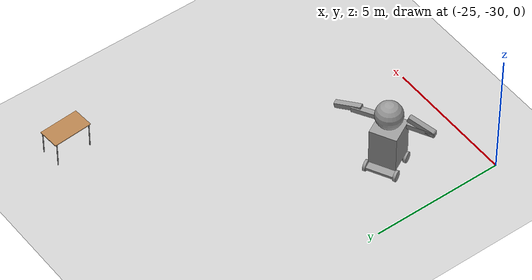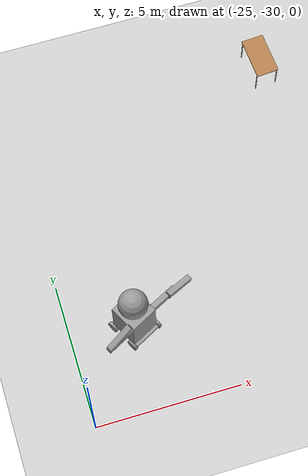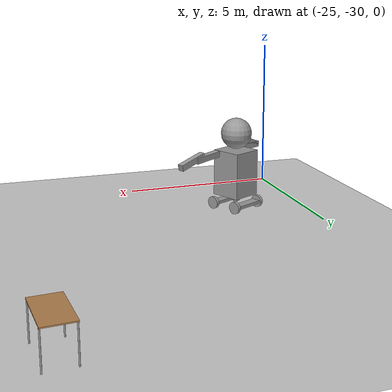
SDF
<sdf version="1.7">
 <world name="default">
  <model name="ground_plane">
   <static>1</static>
   <link name="link">
    <collision name="collision">
     <geometry><plane><normal>0 0 1</normal><size>100 100</size></plane></geometry>
     <surface>
      <contact><collide_bitmask>65535</collide_bitmask></contact>
      <friction><ode><mu>100</mu><mu2>50</mu2></ode></friction>
     </surface>
    </collision>
    <visual name="visual">
     <cast_shadows>0</cast_shadows>
     <geometry><plane><normal>0 0 1</normal><size>100 100</size></plane></geometry>
     <material>
      <script><uri>file://media/materials/scripts/gazebo.material</uri><name>Gazebo/Grey</name></script>
     </material>
    </visual>
   </link>
  </model>
  <model name="humanoid_robot_0">
   <link name="link_1">
    <inertial>
     <mass>2.10479</mass>
     <inertia>
      <ixx>0.952439</ixx>
      <ixy>0</ixy>
      <ixz>0</ixz>
      <iyy>0.952439</iyy>
      <iyz>0</iyz>
      <izz>0.350798</izz>
     </inertia>
    </inertial>
    <pose>-0.448722 -0.08924 -0.419518 0 -0 0</pose>
    <visual name="visual">
     <pose>0 0 0.2 0 -0 0</pose>
     <geometry><box><size>1 1 1.5</size></box></geometry>
     <material>
      <lighting>1</lighting>
      <script><uri>file://media/materials/scripts/gazebo.material</uri><name>Gazebo/Grey</name></script>
      <shader type="pixel"><normal_map>__default__</normal_map></shader>
      <ambient>0.3 0.3 0.3 1</ambient>
      <diffuse>0.7 0.7 0.7 1</diffuse>
      <specular>0.01 0.01 0.01 1</specular>
      <emissive>0 0 0 1</emissive>
     </material>
    </visual>
    <collision name="collision">
     <pose>0 0 0.2 0 -0 0</pose>
     <geometry><box><size>1 1 1.5</size></box></geometry>
     <surface>
      <friction>
       <ode><mu>1</mu><mu2>1</mu2><fdir1>0 0 0</fdir1><slip1>0</slip1><slip2>0</slip2></ode>
       <torsional>
        <coefficient>1</coefficient>
        <patch_radius>0</patch_radius>
        <surface_radius>0</surface_radius>
        <use_patch_radius>1</use_patch_radius>
        <ode><slip>0</slip></ode>
       </torsional>
      </friction>
      <bounce><restitution_coefficient>0</restitution_coefficient><threshold>1e+06</threshold></bounce>
      <contact>
       <collide_without_contact>0</collide_without_contact>
       <collide_without_contact_bitmask>1</collide_without_contact_bitmask>
       <collide_bitmask>1</collide_bitmask>
       <ode>
        <soft_cfm>0</soft_cfm>
        <soft_erp>0.2</soft_erp>
        <kp>1e+13</kp>
        <kd>1</kd>
        <max_vel>0.01</max_vel>
        <min_depth>0</min_depth>
       </ode>
       <bullet>
        <split_impulse>1</split_impulse>
        <split_impulse_penetration_threshold>-0.01</split_impulse_penetration_threshold>
        <soft_cfm>0</soft_cfm>
        <soft_erp>0.2</soft_erp>
        <kp>1e+13</kp>
        <kd>1</kd>
       </bullet>
      </contact>
     </surface>
    </collision>
   </link>
   <link name="link_4">
    <inertial>
     <mass>1</mass>
     <inertia><ixx>0.1</ixx><ixy>0</ixy><ixz>0</ixz><iyy>0.1</iyy><iyz>0</iyz><izz>0.1</izz></inertia>
    </inertial>
    <pose>-0.448722 -0.08924 1.08048 0 -0 0</pose>
    <visual name="visual">
     <geometry><sphere><radius>0.5</radius></sphere></geometry>
     <material>
      <lighting>1</lighting>
      <script><uri>file://media/materials/scripts/gazebo.material</uri><name>Gazebo/Grey</name></script>
      <shader type="pixel"><normal_map>__default__</normal_map></shader>
      <ambient>0.3 0.3 0.3 1</ambient>
      <diffuse>0.7 0.7 0.7 1</diffuse>
      <specular>0.01 0.01 0.01 1</specular>
      <emissive>0 0 0 1</emissive>
     </material>
    </visual>
    <collision name="collision">
     <geometry><sphere><radius>0.5</radius></sphere></geometry>
     <surface>
      <friction>
       <ode><mu>1</mu><mu2>1</mu2><fdir1>0 0 0</fdir1><slip1>0</slip1><slip2>0</slip2></ode>
       <torsional>
        <coefficient>1</coefficient>
        <patch_radius>0</patch_radius>
        <surface_radius>0</surface_radius>
        <use_patch_radius>1</use_patch_radius>
        <ode><slip>0</slip></ode>
       </torsional>
      </friction>
      <bounce><restitution_coefficient>0</restitution_coefficient><threshold>1e+06</threshold></bounce>
      <contact>
       <collide_without_contact>0</collide_without_contact>
       <collide_without_contact_bitmask>1</collide_without_contact_bitmask>
       <collide_bitmask>1</collide_bitmask>
       <ode>
        <soft_cfm>0</soft_cfm>
        <soft_erp>0.2</soft_erp>
        <kp>1e+13</kp>
        <kd>1</kd>
        <max_vel>0.01</max_vel>
        <min_depth>0</min_depth>
       </ode>
       <bullet>
        <split_impulse>1</split_impulse>
        <split_impulse_penetration_threshold>-0.01</split_impulse_penetration_threshold>
        <soft_cfm>0</soft_cfm>
        <soft_erp>0.2</soft_erp>
        <kp>1e+13</kp>
        <kd>1</kd>
       </bullet>
      </contact>
     </surface>
    </collision>
   </link>
   <link name="link_5">
    <inertial>
     <mass>1</mass>
     <inertia>
      <ixx>0.166667</ixx>
      <ixy>0</ixy>
      <ixz>0</ixz>
      <iyy>0.166667</iyy>
      <iyz>0</iyz>
      <izz>0.166667</izz>
     </inertia>
    </inertial>
    <pose>-0.088722 0.91076 0.390482 -0.06 -0.04 0</pose>
    <visual name="visual">
     <geometry><box><size>0.2 1 0.2</size></box></geometry>
     <material>
      <lighting>1</lighting>
      <script><uri>file://media/materials/scripts/gazebo.material</uri><name>Gazebo/Grey</name></script>
      <shader type="pixel"><normal_map>__default__</normal_map></shader>
      <ambient>0.3 0.3 0.3 1</ambient>
      <diffuse>0.7 0.7 0.7 1</diffuse>
      <specular>0.01 0.01 0.01 1</specular>
      <emissive>0 0 0 1</emissive>
     </material>
    </visual>
    <collision name="collision">
     <geometry><box><size>0.2 1 0.2</size></box></geometry>
     <surface>
      <friction>
       <ode><mu>1</mu><mu2>1</mu2><fdir1>0 0 0</fdir1><slip1>0</slip1><slip2>0</slip2></ode>
       <torsional>
        <coefficient>1</coefficient>
        <patch_radius>0</patch_radius>
        <surface_radius>0</surface_radius>
        <use_patch_radius>1</use_patch_radius>
        <ode><slip>0</slip></ode>
       </torsional>
      </friction>
      <bounce><restitution_coefficient>0</restitution_coefficient><threshold>1e+06</threshold></bounce>
      <contact>
       <collide_without_contact>0</collide_without_contact>
       <collide_without_contact_bitmask>1</collide_without_contact_bitmask>
       <collide_bitmask>1</collide_bitmask>
       <ode>
        <soft_cfm>0</soft_cfm>
        <soft_erp>0.2</soft_erp>
        <kp>1e+13</kp>
        <kd>1</kd>
        <max_vel>0.01</max_vel>
        <min_depth>0</min_depth>
       </ode>
       <bullet>
        <split_impulse>1</split_impulse>
        <split_impulse_penetration_threshold>-0.01</split_impulse_penetration_threshold>
        <soft_cfm>0</soft_cfm>
        <soft_erp>0.2</soft_erp>
        <kp>1e+13</kp>
        <kd>1</kd>
       </bullet>
      </contact>
     </surface>
    </collision>
   </link>
   <link name="link_5_clone">
    <inertial>
     <mass>1</mass>
     <inertia>
      <ixx>0.166667</ixx>
      <ixy>0</ixy>
      <ixz>0</ixz>
      <iyy>0.166667</iyy>
      <iyz>0</iyz>
      <izz>0.166667</izz>
     </inertia>
    </inertial>
    <pose>-0.048722 -1.08924 0.430482 0 -0 0</pose>
    <visual name="visual">
     <geometry><box><size>0.2 1 0.2</size></box></geometry>
     <material>
      <lighting>1</lighting>
      <script><uri>file://media/materials/scripts/gazebo.material</uri><name>Gazebo/Grey</name></script>
      <shader type="pixel"><normal_map>__default__</normal_map></shader>
      <ambient>0.3 0.3 0.3 1</ambient>
      <diffuse>0.7 0.7 0.7 1</diffuse>
      <specular>0.01 0.01 0.01 1</specular>
      <emissive>0 0 0 1</emissive>
     </material>
    </visual>
    <collision name="collision">
     <geometry><box><size>0.2 1 0.2</size></box></geometry>
     <surface>
      <friction>
       <ode><mu>1</mu><mu2>1</mu2><fdir1>0 0 0</fdir1><slip1>0</slip1><slip2>0</slip2></ode>
       <torsional>
        <coefficient>1</coefficient>
        <patch_radius>0</patch_radius>
        <surface_radius>0</surface_radius>
        <use_patch_radius>1</use_patch_radius>
        <ode><slip>0</slip></ode>
       </torsional>
      </friction>
      <bounce><restitution_coefficient>0</restitution_coefficient><threshold>1e+06</threshold></bounce>
      <contact>
       <collide_without_contact>0</collide_without_contact>
       <collide_without_contact_bitmask>1</collide_without_contact_bitmask>
       <collide_bitmask>1</collide_bitmask>
       <ode>
        <soft_cfm>0</soft_cfm>
        <soft_erp>0.2</soft_erp>
        <kp>1e+13</kp>
        <kd>1</kd>
        <max_vel>0.01</max_vel>
        <min_depth>0</min_depth>
       </ode>
       <bullet>
        <split_impulse>1</split_impulse>
        <split_impulse_penetration_threshold>-0.01</split_impulse_penetration_threshold>
        <soft_cfm>0</soft_cfm>
        <soft_erp>0.2</soft_erp>
        <kp>1e+13</kp>
        <kd>1</kd>
       </bullet>
      </contact>
     </surface>
    </collision>
   </link>
   <link name="link_5_clone_clone">
    <inertial>
     <mass>1</mass>
     <inertia>
      <ixx>0.166667</ixx>
      <ixy>0</ixy>
      <ixz>0</ixz>
      <iyy>0.166667</iyy>
      <iyz>0</iyz>
      <izz>0.166667</izz>
     </inertia>
    </inertial>
    <pose>-0.048722 -1.08689 0.604392 0.369688 -0 0</pose>
    <visual name="visual">
     <geometry><box><size>0.2 1 0.2</size></box></geometry>
     <material>
      <lighting>1</lighting>
      <script><uri>file://media/materials/scripts/gazebo.material</uri><name>Gazebo/Grey</name></script>
      <shader type="pixel"><normal_map>__default__</normal_map></shader>
      <ambient>0.3 0.3 0.3 1</ambient>
      <diffuse>0.7 0.7 0.7 1</diffuse>
      <specular>0.01 0.01 0.01 1</specular>
      <emissive>0 0 0 1</emissive>
     </material>
    </visual>
    <collision name="collision">
     <geometry><box><size>0.2 1 0.2</size></box></geometry>
     <surface>
      <friction>
       <ode><mu>1</mu><mu2>1</mu2><fdir1>0 0 0</fdir1><slip1>0</slip1><slip2>0</slip2></ode>
       <torsional>
        <coefficient>1</coefficient>
        <patch_radius>0</patch_radius>
        <surface_radius>0</surface_radius>
        <use_patch_radius>1</use_patch_radius>
        <ode><slip>0</slip></ode>
       </torsional>
      </friction>
      <bounce><restitution_coefficient>0</restitution_coefficient><threshold>1e+06</threshold></bounce>
      <contact>
       <collide_without_contact>0</collide_without_contact>
       <collide_without_contact_bitmask>1</collide_without_contact_bitmask>
       <collide_bitmask>1</collide_bitmask>
       <ode>
        <soft_cfm>0</soft_cfm>
        <soft_erp>0.2</soft_erp>
        <kp>1e+13</kp>
        <kd>1</kd>
        <max_vel>0.01</max_vel>
        <min_depth>0</min_depth>
       </ode>
       <bullet>
        <split_impulse>1</split_impulse>
        <split_impulse_penetration_threshold>-0.01</split_impulse_penetration_threshold>
        <soft_cfm>0</soft_cfm>
        <soft_erp>0.2</soft_erp>
        <kp>1e+13</kp>
        <kd>1</kd>
       </bullet>
      </contact>
     </surface>
    </collision>
   </link>
   <link name="link_5_clone_clone_0">
    <inertial>
     <mass>1</mass>
     <inertia>
      <ixx>0.166667</ixx>
      <ixy>0</ixy>
      <ixz>0</ixz>
      <iyy>0.166667</iyy>
      <iyz>0</iyz>
      <izz>0.166667</izz>
     </inertia>
    </inertial>
    <pose>-0.043643 1.55059 0.350025 -0.239275 0 0</pose>
    <visual name="visual">
     <geometry><box><size>0.2 1 0.2</size></box></geometry>
     <material>
      <lighting>1</lighting>
      <script><uri>file://media/materials/scripts/gazebo.material</uri><name>Gazebo/Grey</name></script>
      <shader type="pixel"><normal_map>__default__</normal_map></shader>
      <ambient>0.3 0.3 0.3 1</ambient>
      <diffuse>0.7 0.7 0.7 1</diffuse>
      <specular>0.01 0.01 0.01 1</specular>
      <emissive>0 0 0 1</emissive>
     </material>
    </visual>
    <collision name="collision">
     <geometry><box><size>0.2 1 0.2</size></box></geometry>
     <surface>
      <friction>
       <ode><mu>1</mu><mu2>1</mu2><fdir1>0 0 0</fdir1><slip1>0</slip1><slip2>0</slip2></ode>
       <torsional>
        <coefficient>1</coefficient>
        <patch_radius>0</patch_radius>
        <surface_radius>0</surface_radius>
        <use_patch_radius>1</use_patch_radius>
        <ode><slip>0</slip></ode>
       </torsional>
      </friction>
      <bounce><restitution_coefficient>0</restitution_coefficient><threshold>1e+06</threshold></bounce>
      <contact>
       <collide_without_contact>0</collide_without_contact>
       <collide_without_contact_bitmask>1</collide_without_contact_bitmask>
       <collide_bitmask>1</collide_bitmask>
       <ode>
        <soft_cfm>0</soft_cfm>
        <soft_erp>0.2</soft_erp>
        <kp>1e+13</kp>
        <kd>1</kd>
        <max_vel>0.01</max_vel>
        <min_depth>0</min_depth>
       </ode>
       <bullet>
        <split_impulse>1</split_impulse>
        <split_impulse_penetration_threshold>-0.01</split_impulse_penetration_threshold>
        <soft_cfm>0</soft_cfm>
        <soft_erp>0.2</soft_erp>
        <kp>1e+13</kp>
        <kd>1</kd>
       </bullet>
      </contact>
     </surface>
    </collision>
   </link>
   <model name="robot">
    <link name="link_1">
     <inertial>
      <mass>1</mass>
      <inertia>
       <ixx>0.166667</ixx>
       <ixy>0</ixy>
       <ixz>0</ixz>
       <iyy>0.166667</iyy>
       <iyz>0</iyz>
       <izz>0.166667</izz>
      </inertia>
     </inertial>
     <visual name="visual">
      <geometry><box><size>0.3 1 0.1</size></box></geometry>
      <material>
       <lighting>1</lighting>
       <script><uri>file://media/materials/scripts/gazebo.material</uri><name>Gazebo/Grey</name></script>
       <shader type="pixel"><normal_map>__default__</normal_map></shader>
       <ambient>0.3 0.3 0.3 1</ambient>
       <diffuse>0.7 0.7 0.7 1</diffuse>
       <specular>0.01 0.01 0.01 1</specular>
       <emissive>0 0 0 1</emissive>
      </material>
     </visual>
     <collision name="collision">
      <geometry><box><size>0.3 1 0.1</size></box></geometry>
      <surface>
       <friction>
        <ode><mu>1</mu><mu2>1</mu2><fdir1>0 0 0</fdir1><slip1>0</slip1><slip2>0</slip2></ode>
        <torsional>
         <coefficient>1</coefficient>
         <patch_radius>0</patch_radius>
         <surface_radius>0</surface_radius>
         <use_patch_radius>1</use_patch_radius>
         <ode><slip>0</slip></ode>
        </torsional>
       </friction>
       <bounce><restitution_coefficient>0</restitution_coefficient><threshold>1e+06</threshold></bounce>
       <contact>
        <collide_without_contact>0</collide_without_contact>
        <collide_without_contact_bitmask>1</collide_without_contact_bitmask>
        <collide_bitmask>1</collide_bitmask>
        <ode>
         <soft_cfm>0</soft_cfm>
         <soft_erp>0.2</soft_erp>
         <kp>1e+13</kp>
         <kd>1</kd>
         <max_vel>0.01</max_vel>
         <min_depth>0</min_depth>
        </ode>
        <bullet>
         <split_impulse>1</split_impulse>
         <split_impulse_penetration_threshold>-0.01</split_impulse_penetration_threshold>
         <soft_cfm>0</soft_cfm>
         <soft_erp>0.2</soft_erp>
         <kp>1e+13</kp>
         <kd>1</kd>
        </bullet>
       </contact>
      </surface>
     </collision>
    </link>
    <link name="link_3_clone">
     <inertial>
      <mass>1</mass>
      <inertia><ixx>0.145833</ixx><ixy>0</ixy><ixz>0</ixz><iyy>0.145833</iyy><iyz>0</iyz><izz>0.125</izz></inertia>
     </inertial>
     <pose>0 -0.550019 0 1.5707 -0 0</pose>
     <visual name="visual">
      <geometry><cylinder><radius>0.2</radius><length>0.1</length></cylinder></geometry>
      <material>
       <lighting>1</lighting>
       <script><uri>file://media/materials/scripts/gazebo.material</uri><name>Gazebo/Grey</name></script>
       <shader type="pixel"><normal_map>__default__</normal_map></shader>
       <ambient>0.3 0.3 0.3 1</ambient>
       <diffuse>0.7 0.7 0.7 1</diffuse>
       <specular>0.01 0.01 0.01 1</specular>
       <emissive>0 0 0 1</emissive>
      </material>
     </visual>
     <collision name="collision">
      <geometry><cylinder><radius>0.2</radius><length>0.1</length></cylinder></geometry>
      <surface>
       <friction>
        <ode><mu>1</mu><mu2>1</mu2><fdir1>0 0 0</fdir1><slip1>0</slip1><slip2>0</slip2></ode>
        <torsional>
         <coefficient>1</coefficient>
         <patch_radius>0</patch_radius>
         <surface_radius>0</surface_radius>
         <use_patch_radius>1</use_patch_radius>
         <ode><slip>0</slip></ode>
        </torsional>
       </friction>
       <bounce><restitution_coefficient>0</restitution_coefficient><threshold>1e+06</threshold></bounce>
       <contact>
        <collide_without_contact>0</collide_without_contact>
        <collide_without_contact_bitmask>1</collide_without_contact_bitmask>
        <collide_bitmask>1</collide_bitmask>
        <ode>
         <soft_cfm>0</soft_cfm>
         <soft_erp>0.2</soft_erp>
         <kp>1e+13</kp>
         <kd>1</kd>
         <max_vel>0.01</max_vel>
         <min_depth>0</min_depth>
        </ode>
        <bullet>
         <split_impulse>1</split_impulse>
         <split_impulse_penetration_threshold>-0.01</split_impulse_penetration_threshold>
         <soft_cfm>0</soft_cfm>
         <soft_erp>0.2</soft_erp>
         <kp>1e+13</kp>
         <kd>1</kd>
        </bullet>
       </contact>
      </surface>
     </collision>
    </link>
    <link name="link_3_clone_clone">
     <inertial>
      <mass>1</mass>
      <inertia><ixx>0.145833</ixx><ixy>0</ixy><ixz>0</ixz><iyy>0.145833</iyy><iyz>0</iyz><izz>0.125</izz></inertia>
     </inertial>
     <pose>0 0.550019 0 1.5707 -0 0</pose>
     <visual name="visual">
      <geometry><cylinder><radius>0.2</radius><length>0.1</length></cylinder></geometry>
      <material>
       <lighting>1</lighting>
       <script><uri>file://media/materials/scripts/gazebo.material</uri><name>Gazebo/Grey</name></script>
       <shader type="pixel"><normal_map>__default__</normal_map></shader>
       <ambient>0.3 0.3 0.3 1</ambient>
       <diffuse>0.7 0.7 0.7 1</diffuse>
       <specular>0.01 0.01 0.01 1</specular>
       <emissive>0 0 0 1</emissive>
      </material>
     </visual>
     <collision name="collision">
      <geometry><cylinder><radius>0.2</radius><length>0.1</length></cylinder></geometry>
      <surface>
       <friction>
        <ode><mu>1</mu><mu2>1</mu2><fdir1>0 0 0</fdir1><slip1>0</slip1><slip2>0</slip2></ode>
        <torsional>
         <coefficient>1</coefficient>
         <patch_radius>0</patch_radius>
         <surface_radius>0</surface_radius>
         <use_patch_radius>1</use_patch_radius>
         <ode><slip>0</slip></ode>
        </torsional>
       </friction>
       <bounce><restitution_coefficient>0</restitution_coefficient><threshold>1e+06</threshold></bounce>
       <contact>
        <collide_without_contact>0</collide_without_contact>
        <collide_without_contact_bitmask>1</collide_without_contact_bitmask>
        <collide_bitmask>1</collide_bitmask>
        <ode>
         <soft_cfm>0</soft_cfm>
         <soft_erp>0.2</soft_erp>
         <kp>1e+13</kp>
         <kd>1</kd>
         <max_vel>0.01</max_vel>
         <min_depth>0</min_depth>
        </ode>
        <bullet>
         <split_impulse>1</split_impulse>
         <split_impulse_penetration_threshold>-0.01</split_impulse_penetration_threshold>
         <soft_cfm>0</soft_cfm>
         <soft_erp>0.2</soft_erp>
         <kp>1e+13</kp>
         <kd>1</kd>
        </bullet>
       </contact>
      </surface>
     </collision>
    </link>
    <joint name="link_1_JOINT_1" type="revolute">
     <parent>link_1</parent>
     <child>link_3_clone</child>
     <axis>
      <xyz>0 0 1</xyz>
      <limit>
       <lower>-1.79769e+308</lower>
       <upper>1.79769e+308</upper>
       <effort>-1</effort>
       <velocity>-1</velocity>
      </limit>
      <dynamics>
       <spring_reference>0</spring_reference>
       <spring_stiffness>0</spring_stiffness>
       <damping>0</damping>
      </dynamics>
     </axis>
     <physics>
      <ode><limit><cfm>0</cfm><erp>0.2</erp></limit><suspension><cfm>0</cfm><erp>0.2</erp></suspension></ode>
     </physics>
    </joint>
    <joint name="link_1_JOINT_3" type="revolute">
     <parent>link_1</parent>
     <child>link_3_clone_clone</child>
     <axis>
      <xyz>0 0 1</xyz>
      <limit>
       <lower>-1.79769e+308</lower>
       <upper>1.79769e+308</upper>
       <effort>-1</effort>
       <velocity>-1</velocity>
      </limit>
      <dynamics>
       <spring_reference>0</spring_reference>
       <spring_stiffness>0</spring_stiffness>
       <damping>0</damping>
      </dynamics>
     </axis>
     <physics>
      <ode><limit><cfm>0</cfm><erp>0.2</erp></limit><suspension><cfm>0</cfm><erp>0.2</erp></suspension></ode>
     </physics>
    </joint>
    <static>0</static>
    <pose>-0.041176 -0.042224 -1.22566 0 -0 0</pose>
   </model>
   <model name="robot_0">
    <link name="link_1">
     <inertial>
      <mass>1</mass>
      <inertia>
       <ixx>0.166667</ixx>
       <ixy>0</ixy>
       <ixz>0</ixz>
       <iyy>0.166667</iyy>
       <iyz>0</iyz>
       <izz>0.166667</izz>
      </inertia>
     </inertial>
     <visual name="visual">
      <geometry><box><size>0.3 1 0.1</size></box></geometry>
      <material>
       <lighting>1</lighting>
       <script><uri>file://media/materials/scripts/gazebo.material</uri><name>Gazebo/Grey</name></script>
       <shader type="pixel"><normal_map>__default__</normal_map></shader>
       <ambient>0.3 0.3 0.3 1</ambient>
       <diffuse>0.7 0.7 0.7 1</diffuse>
       <specular>0.01 0.01 0.01 1</specular>
       <emissive>0 0 0 1</emissive>
      </material>
     </visual>
     <collision name="collision">
      <geometry><box><size>0.3 1 0.1</size></box></geometry>
      <surface>
       <friction>
        <ode><mu>1</mu><mu2>1</mu2><fdir1>0 0 0</fdir1><slip1>0</slip1><slip2>0</slip2></ode>
        <torsional>
         <coefficient>1</coefficient>
         <patch_radius>0</patch_radius>
         <surface_radius>0</surface_radius>
         <use_patch_radius>1</use_patch_radius>
         <ode><slip>0</slip></ode>
        </torsional>
       </friction>
       <bounce><restitution_coefficient>0</restitution_coefficient><threshold>1e+06</threshold></bounce>
       <contact>
        <collide_without_contact>0</collide_without_contact>
        <collide_without_contact_bitmask>1</collide_without_contact_bitmask>
        <collide_bitmask>1</collide_bitmask>
        <ode>
         <soft_cfm>0</soft_cfm>
         <soft_erp>0.2</soft_erp>
         <kp>1e+13</kp>
         <kd>1</kd>
         <max_vel>0.01</max_vel>
         <min_depth>0</min_depth>
        </ode>
        <bullet>
         <split_impulse>1</split_impulse>
         <split_impulse_penetration_threshold>-0.01</split_impulse_penetration_threshold>
         <soft_cfm>0</soft_cfm>
         <soft_erp>0.2</soft_erp>
         <kp>1e+13</kp>
         <kd>1</kd>
        </bullet>
       </contact>
      </surface>
     </collision>
    </link>
    <link name="link_3_clone">
     <inertial>
      <mass>1</mass>
      <inertia><ixx>0.145833</ixx><ixy>0</ixy><ixz>0</ixz><iyy>0.145833</iyy><iyz>0</iyz><izz>0.125</izz></inertia>
     </inertial>
     <pose>0 -0.550019 0 1.5707 -0 0</pose>
     <visual name="visual">
      <geometry><cylinder><radius>0.2</radius><length>0.1</length></cylinder></geometry>
      <material>
       <lighting>1</lighting>
       <script><uri>file://media/materials/scripts/gazebo.material</uri><name>Gazebo/Grey</name></script>
       <shader type="pixel"><normal_map>__default__</normal_map></shader>
       <ambient>0.3 0.3 0.3 1</ambient>
       <diffuse>0.7 0.7 0.7 1</diffuse>
       <specular>0.01 0.01 0.01 1</specular>
       <emissive>0 0 0 1</emissive>
      </material>
     </visual>
     <collision name="collision">
      <geometry><cylinder><radius>0.2</radius><length>0.1</length></cylinder></geometry>
      <surface>
       <friction>
        <ode><mu>1</mu><mu2>1</mu2><fdir1>0 0 0</fdir1><slip1>0</slip1><slip2>0</slip2></ode>
        <torsional>
         <coefficient>1</coefficient>
         <patch_radius>0</patch_radius>
         <surface_radius>0</surface_radius>
         <use_patch_radius>1</use_patch_radius>
         <ode><slip>0</slip></ode>
        </torsional>
       </friction>
       <bounce><restitution_coefficient>0</restitution_coefficient><threshold>1e+06</threshold></bounce>
       <contact>
        <collide_without_contact>0</collide_without_contact>
        <collide_without_contact_bitmask>1</collide_without_contact_bitmask>
        <collide_bitmask>1</collide_bitmask>
        <ode>
         <soft_cfm>0</soft_cfm>
         <soft_erp>0.2</soft_erp>
         <kp>1e+13</kp>
         <kd>1</kd>
         <max_vel>0.01</max_vel>
         <min_depth>0</min_depth>
        </ode>
        <bullet>
         <split_impulse>1</split_impulse>
         <split_impulse_penetration_threshold>-0.01</split_impulse_penetration_threshold>
         <soft_cfm>0</soft_cfm>
         <soft_erp>0.2</soft_erp>
         <kp>1e+13</kp>
         <kd>1</kd>
        </bullet>
       </contact>
      </surface>
     </collision>
    </link>
    <link name="link_3_clone_clone">
     <inertial>
      <mass>1</mass>
      <inertia><ixx>0.145833</ixx><ixy>0</ixy><ixz>0</ixz><iyy>0.145833</iyy><iyz>0</iyz><izz>0.125</izz></inertia>
     </inertial>
     <pose>0 0.550019 0 1.5707 -0 0</pose>
     <visual name="visual">
      <geometry><cylinder><radius>0.2</radius><length>0.1</length></cylinder></geometry>
      <material>
       <lighting>1</lighting>
       <script><uri>file://media/materials/scripts/gazebo.material</uri><name>Gazebo/Grey</name></script>
       <shader type="pixel"><normal_map>__default__</normal_map></shader>
       <ambient>0.3 0.3 0.3 1</ambient>
       <diffuse>0.7 0.7 0.7 1</diffuse>
       <specular>0.01 0.01 0.01 1</specular>
       <emissive>0 0 0 1</emissive>
      </material>
     </visual>
     <collision name="collision">
      <geometry><cylinder><radius>0.2</radius><length>0.1</length></cylinder></geometry>
      <surface>
       <friction>
        <ode><mu>1</mu><mu2>1</mu2><fdir1>0 0 0</fdir1><slip1>0</slip1><slip2>0</slip2></ode>
        <torsional>
         <coefficient>1</coefficient>
         <patch_radius>0</patch_radius>
         <surface_radius>0</surface_radius>
         <use_patch_radius>1</use_patch_radius>
         <ode><slip>0</slip></ode>
        </torsional>
       </friction>
       <bounce><restitution_coefficient>0</restitution_coefficient><threshold>1e+06</threshold></bounce>
       <contact>
        <collide_without_contact>0</collide_without_contact>
        <collide_without_contact_bitmask>1</collide_without_contact_bitmask>
        <collide_bitmask>1</collide_bitmask>
        <ode>
         <soft_cfm>0</soft_cfm>
         <soft_erp>0.2</soft_erp>
         <kp>1e+13</kp>
         <kd>1</kd>
         <max_vel>0.01</max_vel>
         <min_depth>0</min_depth>
        </ode>
        <bullet>
         <split_impulse>1</split_impulse>
         <split_impulse_penetration_threshold>-0.01</split_impulse_penetration_threshold>
         <soft_cfm>0</soft_cfm>
         <soft_erp>0.2</soft_erp>
         <kp>1e+13</kp>
         <kd>1</kd>
        </bullet>
       </contact>
      </surface>
     </collision>
    </link>
    <joint name="link_1_JOINT_1" type="revolute">
     <parent>link_1</parent>
     <child>link_3_clone</child>
     <axis>
      <xyz>0 0 1</xyz>
      <limit>
       <lower>-1.79769e+308</lower>
       <upper>1.79769e+308</upper>
       <effort>-1</effort>
       <velocity>-1</velocity>
      </limit>
      <dynamics>
       <spring_reference>0</spring_reference>
       <spring_stiffness>0</spring_stiffness>
       <damping>0</damping>
      </dynamics>
     </axis>
     <physics>
      <ode><limit><cfm>0</cfm><erp>0.2</erp></limit><suspension><cfm>0</cfm><erp>0.2</erp></suspension></ode>
     </physics>
    </joint>
    <joint name="link_1_JOINT_3" type="revolute">
     <parent>link_1</parent>
     <child>link_3_clone_clone</child>
     <axis>
      <xyz>0 0 1</xyz>
      <limit>
       <lower>-1.79769e+308</lower>
       <upper>1.79769e+308</upper>
       <effort>-1</effort>
       <velocity>-1</velocity>
      </limit>
      <dynamics>
       <spring_reference>0</spring_reference>
       <spring_stiffness>0</spring_stiffness>
       <damping>0</damping>
      </dynamics>
     </axis>
     <physics>
      <ode><limit><cfm>0</cfm><erp>0.2</erp></limit><suspension><cfm>0</cfm><erp>0.2</erp></suspension></ode>
     </physics>
    </joint>
    <static>0</static>
    <pose>-0.953654 -0.064519 -1.21068 0 -0 0</pose>
   </model>
   <joint name="link_1_JOINT_0" type="ball">
    <parent>link_1</parent>
    <child>link_4</child>
    <physics>
     <ode><limit><cfm>0</cfm><erp>0.2</erp></limit><suspension><cfm>0</cfm><erp>0.2</erp></suspension></ode>
    </physics>
   </joint>
   <joint name="link_1_JOINT_3" type="ball">
    <parent>link_1</parent>
    <child>link_5</child>
    <physics>
     <ode><limit><cfm>0</cfm><erp>0.2</erp></limit><suspension><cfm>0</cfm><erp>0.2</erp></suspension></ode>
    </physics>
   </joint>
   <joint name="link_1_JOINT_4" type="ball">
    <parent>link_1</parent>
    <child>link_5_clone</child>
    <physics>
     <ode><limit><cfm>0</cfm><erp>0.2</erp></limit><suspension><cfm>0</cfm><erp>0.2</erp></suspension></ode>
    </physics>
   </joint>
   <joint name="link_5_JOINT_10" type="revolute">
    <parent>link_5</parent>
    <child>link_5_clone_clone_0</child>
    <axis>
     <xyz>1 0 0</xyz>
     <limit>
      <lower>-1.79769e+308</lower>
      <upper>1.79769e+308</upper>
      <effort>-1</effort>
      <velocity>-1</velocity>
     </limit>
     <dynamics>
      <spring_reference>0</spring_reference>
      <spring_stiffness>0</spring_stiffness>
      <damping>0</damping>
     </dynamics>
    </axis>
    <physics>
     <ode><limit><cfm>0</cfm><erp>0.2</erp></limit><suspension><cfm>0</cfm><erp>0.2</erp></suspension></ode>
    </physics>
   </joint>
   <joint name="link_5_clone_JOINT_5" type="revolute">
    <parent>link_5_clone</parent>
    <child>link_5_clone_clone</child>
    <pose>0 0 0 -0.01 0 0</pose>
    <axis>
     <xyz>1 0 0</xyz>
     <limit>
      <lower>-1.79769e+308</lower>
      <upper>1.79769e+308</upper>
      <effort>-1</effort>
      <velocity>-1</velocity>
     </limit>
     <dynamics>
      <spring_reference>0</spring_reference>
      <spring_stiffness>0</spring_stiffness>
      <damping>0</damping>
     </dynamics>
    </axis>
    <physics>
     <ode><limit><cfm>0</cfm><erp>0.2</erp></limit><suspension><cfm>0</cfm><erp>0.2</erp></suspension></ode>
    </physics>
   </joint>
   <joint name="link_1_JOINT_1" type="fixed">
    <parent>robot::link_1</parent>
    <child>link_1</child>
    <physics>
     <ode><limit><cfm>0</cfm><erp>0.2</erp></limit><suspension><cfm>0</cfm><erp>0.2</erp></suspension></ode>
    </physics>
   </joint>
   <joint name="link_1_JOINT_2" type="fixed">
    <parent>robot_0::link_1</parent>
    <child>link_1</child>
    <physics>
     <ode><limit><cfm>0</cfm><erp>0.2</erp></limit><suspension><cfm>0</cfm><erp>0.2</erp></suspension></ode>
    </physics>
   </joint>
   <static>0</static>
   <pose>-22.5291 -27.4607 1.42617 -1e-06 -0.016407 -1.08615</pose>
   <scale>200 200 200</scale>
  </model>
  <model name="table_2">
   <static>1</static>
   <link name="link">
    <collision name="surface">
     <pose>0 0 1 0 -0 0</pose>
     <geometry><box><size>1.5 0.8 0.03</size></box></geometry>
     <surface><friction><ode><mu>0.6</mu><mu2>0.6</mu2></ode></friction></surface>
    </collision>
    <visual name="visual1">
     <pose>0 0 1 0 -0 0</pose>
     <geometry><box><size>1.5 0.8 0.03</size></box></geometry>
     <material>
      <script><uri>file://media/materials/scripts/gazebo.material</uri><name>Gazebo/Wood</name></script>
     </material>
    </visual>
    <collision name="front_left_leg">
     <pose>0.68 0.38 0.5 0 -0 0</pose>
     <geometry><cylinder><radius>0.02</radius><length>1</length></cylinder></geometry>
    </collision>
    <visual name="front_left_leg">
     <pose>0.68 0.38 0.5 0 -0 0</pose>
     <geometry><cylinder><radius>0.02</radius><length>1</length></cylinder></geometry>
     <material>
      <script><uri>file://media/materials/scripts/gazebo.material</uri><name>Gazebo/Grey</name></script>
     </material>
    </visual>
    <collision name="front_right_leg">
     <pose>0.68 -0.38 0.5 0 -0 0</pose>
     <geometry><cylinder><radius>0.02</radius><length>1</length></cylinder></geometry>
    </collision>
    <visual name="front_right_leg">
     <pose>0.68 -0.38 0.5 0 -0 0</pose>
     <geometry><cylinder><radius>0.02</radius><length>1</length></cylinder></geometry>
     <material>
      <script><uri>file://media/materials/scripts/gazebo.material</uri><name>Gazebo/Grey</name></script>
     </material>
    </visual>
    <collision name="back_right_leg">
     <pose>-0.68 -0.38 0.5 0 -0 0</pose>
     <geometry><cylinder><radius>0.02</radius><length>1</length></cylinder></geometry>
    </collision>
    <visual name="back_right_leg">
     <pose>-0.68 -0.38 0.5 0 -0 0</pose>
     <geometry><cylinder><radius>0.02</radius><length>1</length></cylinder></geometry>
     <material>
      <script><uri>file://media/materials/scripts/gazebo.material</uri><name>Gazebo/Grey</name></script>
     </material>
    </visual>
    <collision name="back_left_leg">
     <pose>-0.68 0.38 0.5 0 -0 0</pose>
     <geometry><cylinder><radius>0.02</radius><length>1</length></cylinder></geometry>
    </collision>
    <visual name="back_left_leg">
     <pose>-0.68 0.38 0.5 0 -0 0</pose>
     <geometry><cylinder><radius>0.02</radius><length>1</length></cylinder></geometry>
     <material>
      <script><uri>file://media/materials/scripts/gazebo.material</uri><name>Gazebo/Grey</name></script>
     </material>
    </visual>
   </link>
   <pose>-15.7837 -18.9685 0 0 -0 1.6406</pose>
  </model>
 </world>
</sdf>
